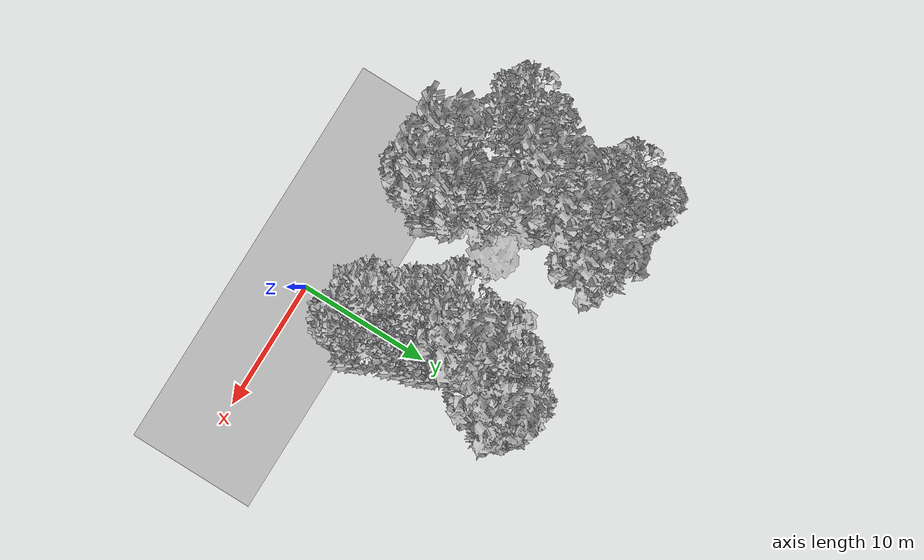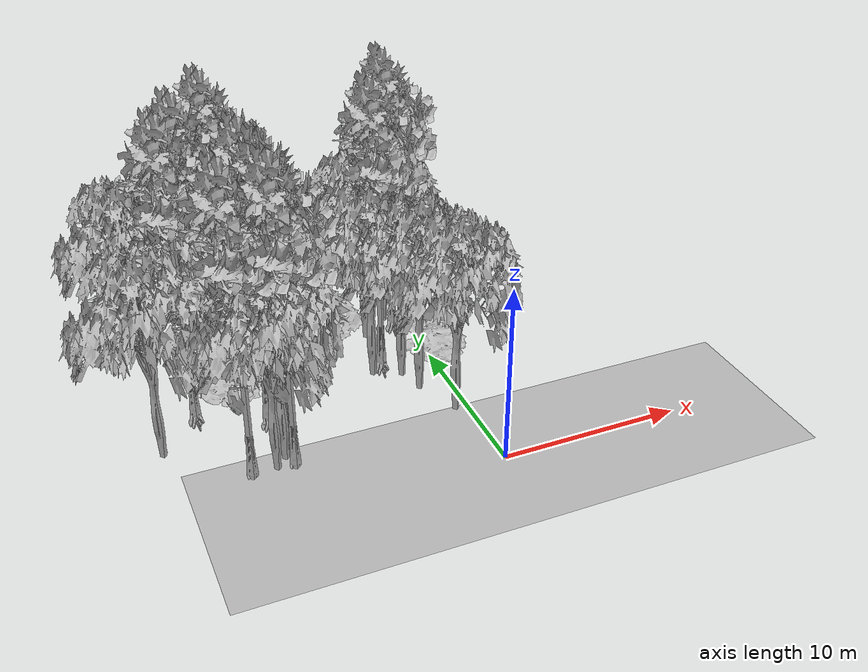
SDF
<sdf version="1.7">
 <world name="default">
  <model name="ground_plane">
   <static>1</static>
   <link name="link">
    <collision name="collision">
     <pose>-50 0 0 0 -0 0</pose>
     <geometry><plane><normal>0 0 1</normal><size>100 100</size></plane></geometry>
     <surface><contact><ode><min_depth>0.01</min_depth><max_vel>0</max_vel></ode></contact></surface>
    </collision>
    <visual name="grass">
     <cast_shadows>0</cast_shadows>
     <geometry>
      <mesh>
       <scale>0.5814285714285714 0.18142857142857144 0.1</scale>
       <uri>file://grass_plane/meshes/grass_plane.dae</uri>
      </mesh>
     </geometry>
    </visual>
   </link>
  </model>
  <model name="Tree 35">
   <static>1</static>
   <pose>-10.600810305536932 14.61796579168653 0 1.57079 -0 0</pose>
   <link name="link">
    <collision name="collision">
     <geometry><mesh><scale>3.5 5 3.5</scale><uri>model://tree_9/meshes/tree_9.obj</uri></mesh></geometry>
    </collision>
    <visual name="visual">
     <geometry><mesh><scale>3.5 5 3.5</scale><uri>model://tree_9/meshes/tree_9.obj</uri></mesh></geometry>
    </visual>
   </link>
  </model>
  <model name="Tree 48">
   <static>1</static>
   <pose>-13.116220967873367 13.077588257481352 0 1.57079 -0 0</pose>
   <link name="link">
    <collision name="collision">
     <geometry><mesh><scale>3.5 5 3.5</scale><uri>model://tree_2/meshes/tree_2.obj</uri></mesh></geometry>
    </collision>
    <visual name="visual">
     <geometry><mesh><scale>3.5 5 3.5</scale><uri>model://tree_2/meshes/tree_2.obj</uri></mesh></geometry>
    </visual>
   </link>
  </model>
  <model name="Tree 50">
   <static>1</static>
   <pose>-9.746782431755562 5.998739821764033 0 1.57079 -0 0</pose>
   <link name="link">
    <collision name="collision">
     <geometry><mesh><scale>3.5 5 3.5</scale><uri>model://tree_9/meshes/tree_9.obj</uri></mesh></geometry>
    </collision>
    <visual name="visual">
     <geometry><mesh><scale>3.5 5 3.5</scale><uri>model://tree_9/meshes/tree_9.obj</uri></mesh></geometry>
    </visual>
   </link>
  </model>
  <model name="Tree 55">
   <static>1</static>
   <pose>-0.7476991067295842 4.784792593591398 0 1.57079 -0 0</pose>
   <link name="link">
    <collision name="collision">
     <geometry><mesh><scale>3.5 5 3.5</scale><uri>model://tree_2/meshes/tree_2.obj</uri></mesh></geometry>
    </collision>
    <visual name="visual">
     <geometry><mesh><scale>3.5 5 3.5</scale><uri>model://tree_2/meshes/tree_2.obj</uri></mesh></geometry>
    </visual>
   </link>
  </model>
  <model name="Tree 77">
   <static>1</static>
   <pose>-10.13331762622218 3.5180320226284927 0 1.57079 -0 0</pose>
   <link name="link">
    <collision name="collision">
     <geometry><mesh><scale>3.5 5 3.5</scale><uri>model://tree_9/meshes/tree_9.obj</uri></mesh></geometry>
    </collision>
    <visual name="visual">
     <geometry><mesh><scale>3.5 5 3.5</scale><uri>model://tree_9/meshes/tree_9.obj</uri></mesh></geometry>
    </visual>
   </link>
  </model>
  <model name="Tree 81">
   <static>1</static>
   <pose>-0.686494236653985 14.14349016015263 0 1.57079 -0 0</pose>
   <link name="link">
    <collision name="collision">
     <geometry><mesh><scale>3.5 5 3.5</scale><uri>model://tree_9/meshes/tree_9.obj</uri></mesh></geometry>
    </collision>
    <visual name="visual">
     <geometry><mesh><scale>3.5 5 3.5</scale><uri>model://tree_9/meshes/tree_9.obj</uri></mesh></geometry>
    </visual>
   </link>
  </model>
  <model name="Tree 89">
   <static>1</static>
   <pose>-4.983225079269133 13.897801021038894 0 1.57079 -0 0</pose>
   <link name="link">
    <collision name="collision">
     <geometry><mesh><scale>3 2 3</scale><uri>model://tree_3/meshes/tree_3.obj</uri></mesh></geometry>
    </collision>
    <visual name="visual">
     <geometry><mesh><scale>3 2 3</scale><uri>model://tree_3/meshes/tree_3.obj</uri></mesh></geometry>
    </visual>
   </link>
  </model>
  <model name="Tree 108">
   <static>1</static>
   <pose>-3.7452633118019563 9.536169736218572 0 1.57079 -0 0</pose>
   <link name="link">
    <collision name="collision">
     <geometry><mesh><scale>3.5 5 3.5</scale><uri>model://tree_2/meshes/tree_2.obj</uri></mesh></geometry>
    </collision>
    <visual name="visual">
     <geometry><mesh><scale>3.5 5 3.5</scale><uri>model://tree_2/meshes/tree_2.obj</uri></mesh></geometry>
    </visual>
   </link>
  </model>
  <model name="Tree 110">
   <static>1</static>
   <pose>-9.925269053644513 5.820656863538783 0 1.57079 -0 0</pose>
   <link name="link">
    <collision name="collision">
     <geometry><mesh><scale>3.5 5 3.5</scale><uri>model://tree_9/meshes/tree_9.obj</uri></mesh></geometry>
    </collision>
    <visual name="visual">
     <geometry><mesh><scale>3.5 5 3.5</scale><uri>model://tree_9/meshes/tree_9.obj</uri></mesh></geometry>
    </visual>
   </link>
  </model>
  <model name="Tree 112">
   <static>1</static>
   <pose>-12.59747599697284 11.991048871360881 0 1.57079 -0 0</pose>
   <link name="link">
    <collision name="collision">
     <geometry><mesh><scale>3.5 5 3.5</scale><uri>model://tree_9/meshes/tree_9.obj</uri></mesh></geometry>
    </collision>
    <visual name="visual">
     <geometry><mesh><scale>3.5 5 3.5</scale><uri>model://tree_9/meshes/tree_9.obj</uri></mesh></geometry>
    </visual>
   </link>
  </model>
  <model name="Tree 116">
   <static>1</static>
   <pose>-12.1029222993104 10.673510576593266 0 1.57079 -0 0</pose>
   <link name="link">
    <collision name="collision">
     <geometry><mesh><scale>4 2.5 4</scale><uri>model://tree_1/meshes/tree_1.obj</uri></mesh></geometry>
    </collision>
    <visual name="visual">
     <geometry><mesh><scale>4 2.5 4</scale><uri>model://tree_1/meshes/tree_1.obj</uri></mesh></geometry>
    </visual>
   </link>
  </model>
  <model name="Tree 134">
   <static>1</static>
   <pose>-2.7785425781361752 13.303618835502409 0 1.57079 -0 0</pose>
   <link name="link">
    <collision name="collision">
     <geometry><mesh><scale>3.5 5 3.5</scale><uri>model://tree_2/meshes/tree_2.obj</uri></mesh></geometry>
    </collision>
    <visual name="visual">
     <geometry><mesh><scale>3.5 5 3.5</scale><uri>model://tree_2/meshes/tree_2.obj</uri></mesh></geometry>
    </visual>
   </link>
  </model>
  <model name="Tree 149">
   <static>1</static>
   <pose>-11.104272946310246 3.687607832691029 0 1.57079 -0 0</pose>
   <link name="link">
    <collision name="collision">
     <geometry><mesh><scale>3.5 5 3.5</scale><uri>model://tree_2/meshes/tree_2.obj</uri></mesh></geometry>
    </collision>
    <visual name="visual">
     <geometry><mesh><scale>3.5 5 3.5</scale><uri>model://tree_2/meshes/tree_2.obj</uri></mesh></geometry>
    </visual>
   </link>
  </model>
  <model name="Tree 150">
   <static>1</static>
   <pose>-2.8642754777516686 10.29024409231251 0 1.57079 -0 0</pose>
   <link name="link">
    <collision name="collision">
     <geometry><mesh><scale>3.5 5 3.5</scale><uri>model://tree_9/meshes/tree_9.obj</uri></mesh></geometry>
    </collision>
    <visual name="visual">
     <geometry><mesh><scale>3.5 5 3.5</scale><uri>model://tree_9/meshes/tree_9.obj</uri></mesh></geometry>
    </visual>
   </link>
  </model>
  <model name="Tree 159">
   <static>1</static>
   <pose>-2.2534912109380087 8.865499482425225 0 1.57079 -0 0</pose>
   <link name="link">
    <collision name="collision">
     <geometry><mesh><scale>3.5 5 3.5</scale><uri>model://tree_2/meshes/tree_2.obj</uri></mesh></geometry>
    </collision>
    <visual name="visual">
     <geometry><mesh><scale>3.5 5 3.5</scale><uri>model://tree_2/meshes/tree_2.obj</uri></mesh></geometry>
    </visual>
   </link>
  </model>
  <model name="Tree 184">
   <static>1</static>
   <pose>-1.818625562148 7.301152984713241 0 1.57079 -0 0</pose>
   <link name="link">
    <collision name="collision">
     <geometry><mesh><scale>3.5 5 3.5</scale><uri>model://tree_2/meshes/tree_2.obj</uri></mesh></geometry>
    </collision>
    <visual name="visual">
     <geometry><mesh><scale>3.5 5 3.5</scale><uri>model://tree_2/meshes/tree_2.obj</uri></mesh></geometry>
    </visual>
   </link>
  </model>
  <model name="Tree 189">
   <static>1</static>
   <pose>0.03948017288703909 9.946111416825389 0 1.57079 -0 0</pose>
   <link name="link">
    <collision name="collision">
     <geometry><mesh><scale>4 2.5 4</scale><uri>model://tree_1/meshes/tree_1.obj</uri></mesh></geometry>
    </collision>
    <visual name="visual">
     <geometry><mesh><scale>4 2.5 4</scale><uri>model://tree_1/meshes/tree_1.obj</uri></mesh></geometry>
    </visual>
   </link>
  </model>
  <model name="Tree 205">
   <static>1</static>
   <pose>-15.661642523237411 14.828673183116756 0 1.57079 -0 0</pose>
   <link name="link">
    <collision name="collision">
     <geometry><mesh><scale>3.5 5 3.5</scale><uri>model://tree_2/meshes/tree_2.obj</uri></mesh></geometry>
    </collision>
    <visual name="visual">
     <geometry><mesh><scale>3.5 5 3.5</scale><uri>model://tree_2/meshes/tree_2.obj</uri></mesh></geometry>
    </visual>
   </link>
  </model>
  <model name="Tree 230">
   <static>1</static>
   <pose>-12.357534321505405 3.5596220011972264 0 1.57079 -0 0</pose>
   <link name="link">
    <collision name="collision">
     <geometry><mesh><scale>3.5 5 3.5</scale><uri>model://tree_9/meshes/tree_9.obj</uri></mesh></geometry>
    </collision>
    <visual name="visual">
     <geometry><mesh><scale>3.5 5 3.5</scale><uri>model://tree_9/meshes/tree_9.obj</uri></mesh></geometry>
    </visual>
   </link>
  </model>
  <model name="Tree 237">
   <static>1</static>
   <pose>-9.771027173965322 9.984475755753515 0 1.57079 -0 0</pose>
   <link name="link">
    <collision name="collision">
     <geometry><mesh><scale>3 2 3</scale><uri>model://tree_3/meshes/tree_3.obj</uri></mesh></geometry>
    </collision>
    <visual name="visual">
     <geometry><mesh><scale>3 2 3</scale><uri>model://tree_3/meshes/tree_3.obj</uri></mesh></geometry>
    </visual>
   </link>
  </model>
  <model name="Tree 255">
   <static>1</static>
   <pose>-10.351009706236972 7.727369043714095 0 1.57079 -0 0</pose>
   <link name="link">
    <collision name="collision">
     <geometry><mesh><scale>3.5 5 3.5</scale><uri>model://tree_9/meshes/tree_9.obj</uri></mesh></geometry>
    </collision>
    <visual name="visual">
     <geometry><mesh><scale>3.5 5 3.5</scale><uri>model://tree_9/meshes/tree_9.obj</uri></mesh></geometry>
    </visual>
   </link>
  </model>
  <model name="Tree 265">
   <static>1</static>
   <pose>-16.240193523025 6.878162859666151 0 1.57079 -0 0</pose>
   <link name="link">
    <collision name="collision">
     <geometry><mesh><scale>3.5 5 3.5</scale><uri>model://tree_2/meshes/tree_2.obj</uri></mesh></geometry>
    </collision>
    <visual name="visual">
     <geometry><mesh><scale>3.5 5 3.5</scale><uri>model://tree_2/meshes/tree_2.obj</uri></mesh></geometry>
    </visual>
   </link>
  </model>
  <model name="Tree 271">
   <static>1</static>
   <pose>-13.887148836995713 9.547566735881766 0 1.57079 -0 0</pose>
   <link name="link">
    <collision name="collision">
     <geometry><mesh><scale>3.5 5 3.5</scale><uri>model://tree_9/meshes/tree_9.obj</uri></mesh></geometry>
    </collision>
    <visual name="visual">
     <geometry><mesh><scale>3.5 5 3.5</scale><uri>model://tree_9/meshes/tree_9.obj</uri></mesh></geometry>
    </visual>
   </link>
  </model>
  <model name="Tree 281">
   <static>1</static>
   <pose>-1.1113564304364445 14.651783520664907 0 1.57079 -0 0</pose>
   <link name="link">
    <collision name="collision">
     <geometry><mesh><scale>3.5 5 3.5</scale><uri>model://tree_2/meshes/tree_2.obj</uri></mesh></geometry>
    </collision>
    <visual name="visual">
     <geometry><mesh><scale>3.5 5 3.5</scale><uri>model://tree_2/meshes/tree_2.obj</uri></mesh></geometry>
    </visual>
   </link>
  </model>
  <model name="Tree 283">
   <static>1</static>
   <pose>-10.498408983057587 4.315617047500588 0 1.57079 -0 0</pose>
   <link name="link">
    <collision name="collision">
     <geometry><mesh><scale>3.5 5 3.5</scale><uri>model://tree_2/meshes/tree_2.obj</uri></mesh></geometry>
    </collision>
    <visual name="visual">
     <geometry><mesh><scale>3.5 5 3.5</scale><uri>model://tree_2/meshes/tree_2.obj</uri></mesh></geometry>
    </visual>
   </link>
  </model>
 </world>
</sdf>
